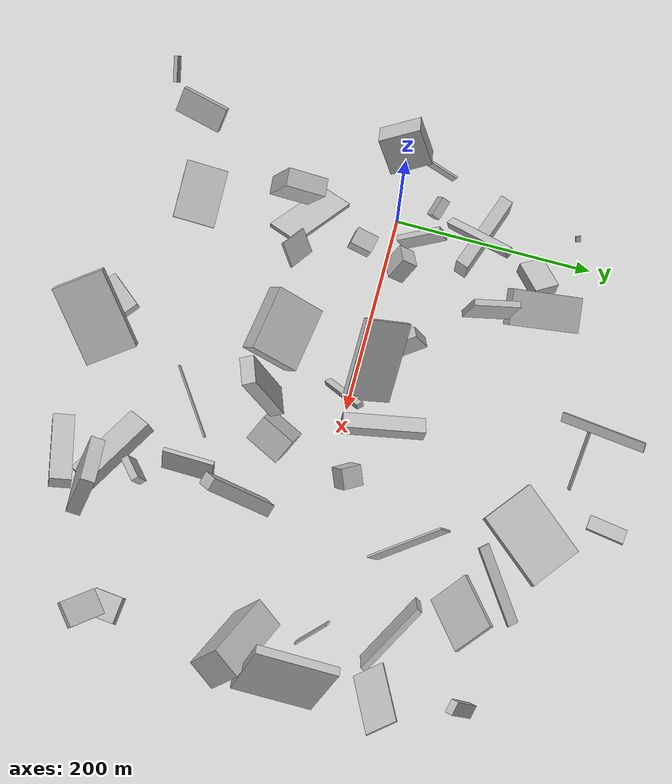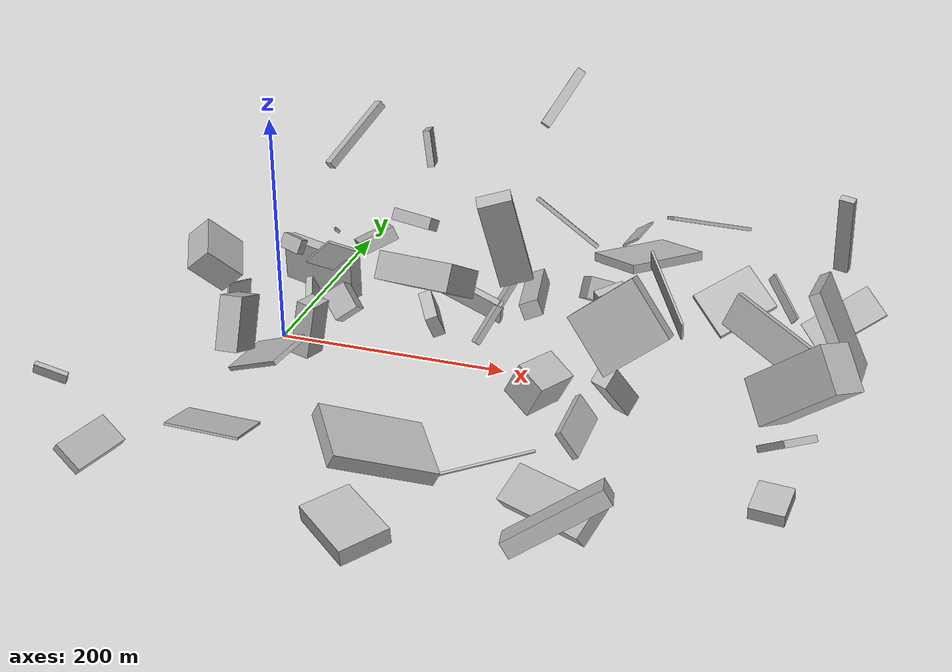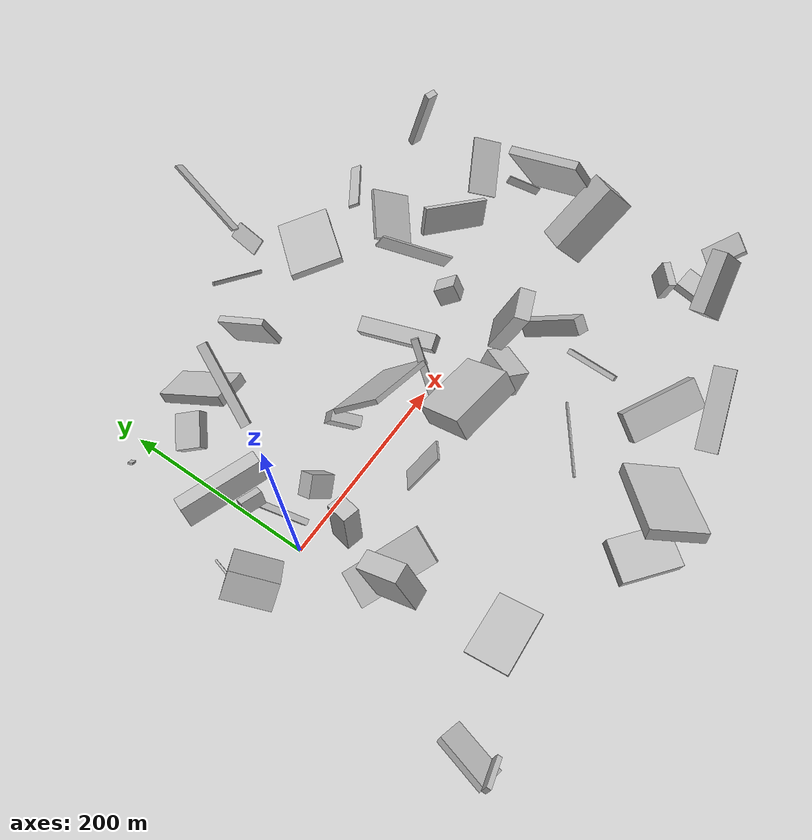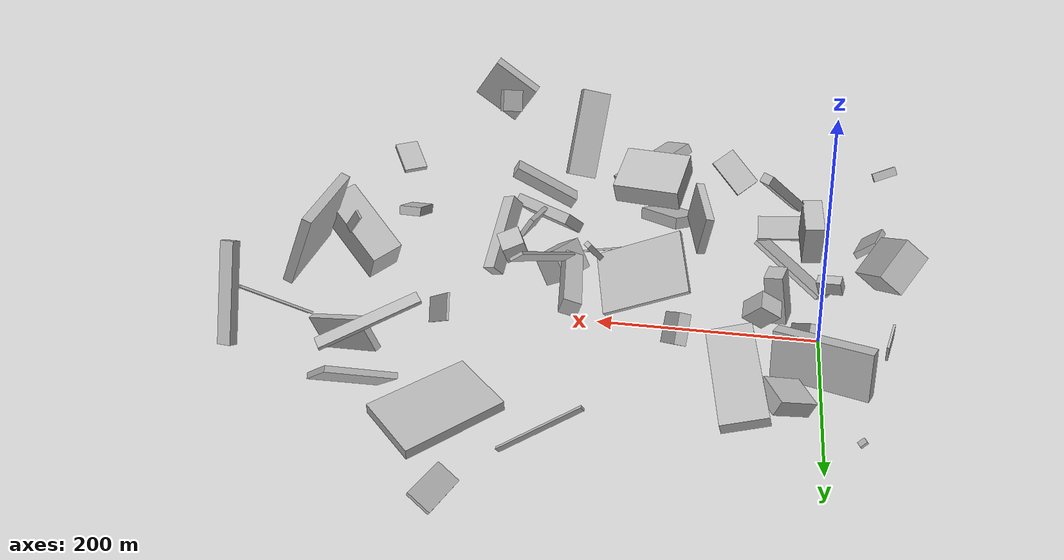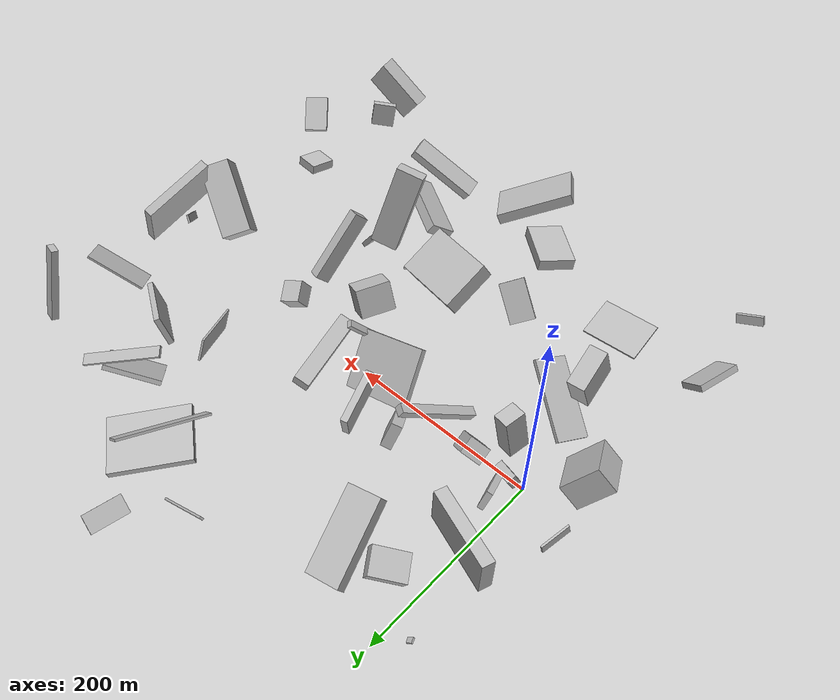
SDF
<sdf version="1.6">
 <world name="default">
  <scene>
   <sky><clouds><speed>12</speed></clouds></sky>
   <ambient>0.4 0.4 0.4 1</ambient>
   <background>0.7 0.7 0.7 1</background>
   <shadows>1</shadows>
  </scene>
  <gravity>0 0 -9.8066</gravity>
  <magnetic_field>6e-06 2.3e-05 -4.2e-05</magnetic_field>
  <physics default="0" name="default_physics" type="ode">
   <ode>
    <solver>
     <type>quick</type>
     <iters>10</iters>
     <sor>1.0</sor>
     <use_dynamic_moi_rescaling>0</use_dynamic_moi_rescaling>
    </solver>
    <constraints>
     <cfm>0</cfm>
     <erp>0.2</erp>
     <contact_max_correcting_vel>100</contact_max_correcting_vel>
     <contact_surface_layer>0.001</contact_surface_layer>
    </constraints>
   </ode>
   <max_step_size>0.004</max_step_size>
   <real_time_factor>1</real_time_factor>
   <real_time_update_rate>250</real_time_update_rate>
  </physics>
  <light name="sun" type="directional">
   <pose>0 0 10 0 0 0</pose>
   <diffuse>0.8 0.8 0.8 1</diffuse>
   <specular>0.2 0.2 0.2 1</specular>
   <attenuation>
    <range>1000</range>
    <constant>0.9</constant>
    <linear>0.01</linear>
    <quadratic>0.001</quadratic>
   </attenuation>
   <direction>-0.5 0.1 -0.9</direction>
  </light>
  <model name="building_1">
   <static>0</static>
   <pose>0.3724580403340614 -99.86659823072063 67.26739376059439 1.616196735437899 -1.1512752399519093 1.620287872233734</pose>
   <link name="link">
    <gravity>0</gravity>
    <pose>0 0 9.0 0 0 0</pose>
    <collision name="collision"><geometry><box><size>44 41 18</size></box></geometry></collision>
    <visual name="visual">
     <cast_shadows>0</cast_shadows>
     <geometry><box><size>44 41 18</size></box></geometry>
     <material>
      <script>
       <uri>model://HANNAS_wall/materials/scripts</uri>
       <uri>model://HANNAS_wall/materials/textures</uri>
       <name>vrc/HANNAS_wall</name>
      </script>
     </material>
    </visual>
   </link>
  </model>
  <model name="building_2">
   <static>0</static>
   <pose>165.34989477341057 -258.3586021208847 9.881582659225682 -0.09441727365410053 -0.04410015815050428 2.4561004035040384</pose>
   <link name="link">
    <gravity>0</gravity>
    <pose>0 0 6.5 0 0 0</pose>
    <collision name="collision"><geometry><box><size>59 40 13</size></box></geometry></collision>
    <visual name="visual">
     <cast_shadows>0</cast_shadows>
     <geometry><box><size>59 40 13</size></box></geometry>
     <material>
      <script>
       <uri>model://HANNAS_wall/materials/scripts</uri>
       <uri>model://HANNAS_wall/materials/textures</uri>
       <name>vrc/HANNAS_wall</name>
      </script>
     </material>
    </visual>
   </link>
  </model>
  <model name="building_3">
   <static>0</static>
   <pose>466.5286692263978 50.95996229520991 67.64057434504454 1.0766238511896427 1.0268774798870643 -0.4371169626938453</pose>
   <link name="link">
    <gravity>0</gravity>
    <pose>0 0 40.0 0 0 0</pose>
    <collision name="collision"><geometry><box><size>80 9 80</size></box></geometry></collision>
    <visual name="visual">
     <cast_shadows>0</cast_shadows>
     <geometry><box><size>80 9 80</size></box></geometry>
     <material>
      <script>
       <uri>model://HANNAS_wall/materials/scripts</uri>
       <uri>model://HANNAS_wall/materials/textures</uri>
       <name>vrc/HANNAS_wall</name>
      </script>
     </material>
    </visual>
   </link>
  </model>
  <model name="building_4">
   <static>0</static>
   <pose>355.60761390157677 -204.97897324230613 154.7226767060926 -0.6800679251905083 0.27318008837970803 1.5317574090756334</pose>
   <link name="link">
    <gravity>0</gravity>
    <pose>0 0 23.0 0 0 0</pose>
    <collision name="collision"><geometry><box><size>13 52 46</size></box></geometry></collision>
    <visual name="visual">
     <cast_shadows>0</cast_shadows>
     <geometry><box><size>13 52 46</size></box></geometry>
     <material>
      <script>
       <uri>model://HANNAS_wall/materials/scripts</uri>
       <uri>model://HANNAS_wall/materials/textures</uri>
       <name>vrc/HANNAS_wall</name>
      </script>
     </material>
    </visual>
   </link>
  </model>
  <model name="building_5">
   <static>0</static>
   <pose>276.9196881448696 12.073370149287962 83.15056061725647 2.0539909657653723 -0.3283103271377018 -2.738229087266363</pose>
   <link name="link">
    <gravity>0</gravity>
    <pose>0 0 10.5 0 0 0</pose>
    <collision name="collision"><geometry><box><size>20 18 21</size></box></geometry></collision>
    <visual name="visual">
     <cast_shadows>0</cast_shadows>
     <geometry><box><size>20 18 21</size></box></geometry>
     <material>
      <script>
       <uri>model://HANNAS_wall/materials/scripts</uri>
       <uri>model://HANNAS_wall/materials/textures</uri>
       <name>vrc/HANNAS_wall</name>
      </script>
     </material>
    </visual>
   </link>
  </model>
  <model name="building_6">
   <static>0</static>
   <pose>275.60423052863126 203.50929142443488 18.702415073050815 0.17754402533205174 -0.0944353137408715 -2.2539786559695965</pose>
   <link name="link">
    <gravity>0</gravity>
    <pose>0 0 4.0 0 0 0</pose>
    <collision name="collision"><geometry><box><size>80 57 8</size></box></geometry></collision>
    <visual name="visual">
     <cast_shadows>0</cast_shadows>
     <geometry><box><size>80 57 8</size></box></geometry>
     <material>
      <script>
       <uri>model://HANNAS_wall/materials/scripts</uri>
       <uri>model://HANNAS_wall/materials/textures</uri>
       <name>vrc/HANNAS_wall</name>
      </script>
     </material>
    </visual>
   </link>
  </model>
  <model name="building_7">
   <static>0</static>
   <pose>29.29331777772242 -24.90051492797867 30.68784601526994 2.2572189336541317 -1.3991428197726965 0.6846162268376657</pose>
   <link name="link">
    <gravity>0</gravity>
    <pose>0 0 8.5 0 0 0</pose>
    <collision name="collision"><geometry><box><size>47 22 17</size></box></geometry></collision>
    <visual name="visual">
     <cast_shadows>0</cast_shadows>
     <geometry><box><size>47 22 17</size></box></geometry>
     <material>
      <script>
       <uri>model://HANNAS_wall/materials/scripts</uri>
       <uri>model://HANNAS_wall/materials/textures</uri>
       <name>vrc/HANNAS_wall</name>
      </script>
     </material>
    </visual>
   </link>
  </model>
  <model name="building_8">
   <static>0</static>
   <pose>451.1207860059633 186.43742037783116 45.72575842599565 -0.2873477587401919 -0.06861965759047883 2.9330695278554706</pose>
   <link name="link">
    <gravity>0</gravity>
    <pose>0 0 40.0 0 0 0</pose>
    <collision name="collision"><geometry><box><size>13 7 80</size></box></geometry></collision>
    <visual name="visual">
     <cast_shadows>0</cast_shadows>
     <geometry><box><size>13 7 80</size></box></geometry>
     <material>
      <script>
       <uri>model://HANNAS_wall/materials/scripts</uri>
       <uri>model://HANNAS_wall/materials/textures</uri>
       <name>vrc/HANNAS_wall</name>
      </script>
     </material>
    </visual>
   </link>
  </model>
  <model name="building_9">
   <static>0</static>
   <pose>154.41623055257105 16.26416152098095 58.46111417775134 0.798266777980725 -0.3702357783244031 3.117267428623996</pose>
   <link name="link">
    <gravity>0</gravity>
    <pose>0 0 2.5 0 0 0</pose>
    <collision name="collision"><geometry><box><size>80 58 5</size></box></geometry></collision>
    <visual name="visual">
     <cast_shadows>0</cast_shadows>
     <geometry><box><size>80 58 5</size></box></geometry>
     <material>
      <script>
       <uri>model://HANNAS_wall/materials/scripts</uri>
       <uri>model://HANNAS_wall/materials/textures</uri>
       <name>vrc/HANNAS_wall</name>
      </script>
     </material>
    </visual>
   </link>
  </model>
  <model name="building_10">
   <static>0</static>
   <pose>182.73685442253338 -22.917845975726244 36.78456935781498 0.33760734351781135 -0.704754471500813 -2.605184405732771</pose>
   <link name="link">
    <gravity>0</gravity>
    <pose>0 0 31.0 0 0 0</pose>
    <collision name="collision"><geometry><box><size>5 7 62</size></box></geometry></collision>
    <visual name="visual">
     <cast_shadows>0</cast_shadows>
     <geometry><box><size>5 7 62</size></box></geometry>
     <material>
      <script>
       <uri>model://HANNAS_wall/materials/scripts</uri>
       <uri>model://HANNAS_wall/materials/textures</uri>
       <name>vrc/HANNAS_wall</name>
      </script>
     </material>
    </visual>
   </link>
  </model>
  <model name="building_11">
   <static>0</static>
   <pose>446.5673380608049 -169.78141664433895 30.453736869358035 -0.17426015798934644 -0.0033444974119696993 3.042064808893999</pose>
   <link name="link">
    <gravity>0</gravity>
    <pose>0 0 5.0 0 0 0</pose>
    <collision name="collision"><geometry><box><size>26 29 10</size></box></geometry></collision>
    <visual name="visual">
     <cast_shadows>0</cast_shadows>
     <geometry><box><size>26 29 10</size></box></geometry>
     <material>
      <script>
       <uri>model://HANNAS_wall/materials/scripts</uri>
       <uri>model://HANNAS_wall/materials/textures</uri>
       <name>vrc/HANNAS_wall</name>
      </script>
     </material>
    </visual>
   </link>
  </model>
  <model name="building_12">
   <static>0</static>
   <pose>317.38057387821044 -261.1648209136997 51.078834608956356 1.9526222986388724 -0.9723080838560146 3.029523227245176</pose>
   <link name="link">
    <gravity>0</gravity>
    <pose>0 0 10.5 0 0 0</pose>
    <collision name="collision"><geometry><box><size>13 80 21</size></box></geometry></collision>
    <visual name="visual">
     <cast_shadows>0</cast_shadows>
     <geometry><box><size>13 80 21</size></box></geometry>
     <material>
      <script>
       <uri>model://HANNAS_wall/materials/scripts</uri>
       <uri>model://HANNAS_wall/materials/textures</uri>
       <name>vrc/HANNAS_wall</name>
      </script>
     </material>
    </visual>
   </link>
  </model>
  <model name="building_13">
   <static>0</static>
   <pose>348.8925176690761 171.11558611686243 24.30594754012438 -2.14221706936962 0.35404279643963454 -2.468441182451524</pose>
   <link name="link">
    <gravity>0</gravity>
    <pose>0 0 23.0 0 0 0</pose>
    <collision name="collision"><geometry><box><size>58 5 46</size></box></geometry></collision>
    <visual name="visual">
     <cast_shadows>0</cast_shadows>
     <geometry><box><size>58 5 46</size></box></geometry>
     <material>
      <script>
       <uri>model://HANNAS_wall/materials/scripts</uri>
       <uri>model://HANNAS_wall/materials/textures</uri>
       <name>vrc/HANNAS_wall</name>
      </script>
     </material>
    </visual>
   </link>
  </model>
  <model name="building_14">
   <static>0</static>
   <pose>-4.912476381467108 34.85858047472949 65.60231107728569 -0.13218260397984039 -0.46691492644859867 -1.8027822964762972</pose>
   <link name="link">
    <gravity>0</gravity>
    <pose>0 0 6.5 0 0 0</pose>
    <collision name="collision"><geometry><box><size>9 20 13</size></box></geometry></collision>
    <visual name="visual">
     <cast_shadows>0</cast_shadows>
     <geometry><box><size>9 20 13</size></box></geometry>
     <material>
      <script>
       <uri>model://HANNAS_wall/materials/scripts</uri>
       <uri>model://HANNAS_wall/materials/textures</uri>
       <name>vrc/HANNAS_wall</name>
      </script>
     </material>
    </visual>
   </link>
  </model>
  <model name="building_15">
   <static>0</static>
   <pose>101.79234937061256 104.33719968358675 132.0590210170992 0.3104467073966395 0.13034357726491547 -2.819616660759673</pose>
   <link name="link">
    <gravity>0</gravity>
    <pose>0 0 15.5 0 0 0</pose>
    <collision name="collision"><geometry><box><size>6 45 31</size></box></geometry></collision>
    <visual name="visual">
     <cast_shadows>0</cast_shadows>
     <geometry><box><size>6 45 31</size></box></geometry>
     <material>
      <script>
       <uri>model://HANNAS_wall/materials/scripts</uri>
       <uri>model://HANNAS_wall/materials/textures</uri>
       <name>vrc/HANNAS_wall</name>
      </script>
     </material>
    </visual>
   </link>
  </model>
  <model name="building_16">
   <static>0</static>
   <pose>32.63202711252501 -194.23589382953537 35.16999882699211 -3.0945395103863587 0.2663629004241226 1.6098199458437605</pose>
   <link name="link">
    <gravity>0</gravity>
    <pose>0 0 1.0 0 0 0</pose>
    <collision name="collision"><geometry><box><size>42 59 2</size></box></geometry></collision>
    <visual name="visual">
     <cast_shadows>0</cast_shadows>
     <geometry><box><size>42 59 2</size></box></geometry>
     <material>
      <script>
       <uri>model://HANNAS_wall/materials/scripts</uri>
       <uri>model://HANNAS_wall/materials/textures</uri>
       <name>vrc/HANNAS_wall</name>
      </script>
     </material>
    </visual>
   </link>
  </model>
  <model name="building_17">
   <static>0</static>
   <pose>249.08630206016738 275.5834844101921 9.884272499052866 -2.520167869791346 0.04091362143770133 -1.723890742903491</pose>
   <link name="link">
    <gravity>0</gravity>
    <pose>0 0 1.0 0 0 0</pose>
    <collision name="collision"><geometry><box><size>38 19 2</size></box></geometry></collision>
    <visual name="visual">
     <cast_shadows>0</cast_shadows>
     <geometry><box><size>38 19 2</size></box></geometry>
     <material>
      <script>
       <uri>model://HANNAS_wall/materials/scripts</uri>
       <uri>model://HANNAS_wall/materials/textures</uri>
       <name>vrc/HANNAS_wall</name>
      </script>
     </material>
    </visual>
   </link>
  </model>
  <model name="building_18">
   <static>0</static>
   <pose>368.06799291012 116.4060323520976 28.34471739820082 -2.3968875714806135 1.1850553639820902 -2.863218448801658</pose>
   <link name="link">
    <gravity>0</gravity>
    <pose>0 0 40.0 0 0 0</pose>
    <collision name="collision"><geometry><box><size>32 6 80</size></box></geometry></collision>
    <visual name="visual">
     <cast_shadows>0</cast_shadows>
     <geometry><box><size>32 6 80</size></box></geometry>
     <material>
      <script>
       <uri>model://HANNAS_wall/materials/scripts</uri>
       <uri>model://HANNAS_wall/materials/textures</uri>
       <name>vrc/HANNAS_wall</name>
      </script>
     </material>
    </visual>
   </link>
  </model>
  <model name="building_19">
   <static>0</static>
   <pose>303.7274909044927 -130.81866432711655 34.89777384032968 -0.6094578938052064 -0.059013356354475896 1.5450119429024285</pose>
   <link name="link">
    <gravity>0</gravity>
    <pose>0 0 12.0 0 0 0</pose>
    <collision name="collision"><geometry><box><size>51 5 24</size></box></geometry></collision>
    <visual name="visual">
     <cast_shadows>0</cast_shadows>
     <geometry><box><size>51 5 24</size></box></geometry>
     <material>
      <script>
       <uri>model://HANNAS_wall/materials/scripts</uri>
       <uri>model://HANNAS_wall/materials/textures</uri>
       <name>vrc/HANNAS_wall</name>
      </script>
     </material>
    </visual>
   </link>
  </model>
  <model name="building_20">
   <static>0</static>
   <pose>-37.23985876085767 100.44339086514778 26.10668612741843 1.5707770805559071 -0.0167259973887624 1.230068655264026</pose>
   <link name="link">
    <gravity>0</gravity>
    <pose>0 0 40.0 0 0 0</pose>
    <collision name="collision"><geometry><box><size>13 40 80</size></box></geometry></collision>
    <visual name="visual">
     <cast_shadows>0</cast_shadows>
     <geometry><box><size>13 40 80</size></box></geometry>
     <material>
      <script>
       <uri>model://HANNAS_wall/materials/scripts</uri>
       <uri>model://HANNAS_wall/materials/textures</uri>
       <name>vrc/HANNAS_wall</name>
      </script>
     </material>
    </visual>
   </link>
  </model>
  <model name="building_21">
   <static>0</static>
   <pose>211.10925191179547 -77.062126343641 156.0449857743255 0.8037113929837879 1.2237552987834603 1.2003497398565242</pose>
   <link name="link">
    <gravity>0</gravity>
    <pose>0 0 13.0 0 0 0</pose>
    <collision name="collision"><geometry><box><size>80 13 26</size></box></geometry></collision>
    <visual name="visual">
     <cast_shadows>0</cast_shadows>
     <geometry><box><size>80 13 26</size></box></geometry>
     <material>
      <script>
       <uri>model://HANNAS_wall/materials/scripts</uri>
       <uri>model://HANNAS_wall/materials/textures</uri>
       <name>vrc/HANNAS_wall</name>
      </script>
     </material>
    </visual>
   </link>
  </model>
  <model name="building_22">
   <static>0</static>
   <pose>159.44475679074253 -77.6425032186038 110.04834384006463 0.535823091454583 0.029326634333732903 2.994350617729776</pose>
   <link name="link">
    <gravity>0</gravity>
    <pose>0 0 11.0 0 0 0</pose>
    <collision name="collision"><geometry><box><size>62 49 22</size></box></geometry></collision>
    <visual name="visual">
     <cast_shadows>0</cast_shadows>
     <geometry><box><size>62 49 22</size></box></geometry>
     <material>
      <script>
       <uri>model://HANNAS_wall/materials/scripts</uri>
       <uri>model://HANNAS_wall/materials/textures</uri>
       <name>vrc/HANNAS_wall</name>
      </script>
     </material>
    </visual>
   </link>
  </model>
  <model name="building_23">
   <static>0</static>
   <pose>18.530795248846772 -99.39374277229236 28.22489046517429 1.0171480806891706 -0.9946940015437461 -3.063762389771886</pose>
   <link name="link">
    <gravity>0</gravity>
    <pose>0 0 17.5 0 0 0</pose>
    <collision name="collision"><geometry><box><size>4 80 35</size></box></geometry></collision>
    <visual name="visual">
     <cast_shadows>0</cast_shadows>
     <geometry><box><size>4 80 35</size></box></geometry>
     <material>
      <script>
       <uri>model://HANNAS_wall/materials/scripts</uri>
       <uri>model://HANNAS_wall/materials/textures</uri>
       <name>vrc/HANNAS_wall</name>
      </script>
     </material>
    </visual>
   </link>
  </model>
  <model name="building_24">
   <static>0</static>
   <pose>54.81488856681998 195.8820982586163 30.35169945511649 -0.46060774220427647 1.0439233473817975 -1.8471746381902</pose>
   <link name="link">
    <gravity>0</gravity>
    <pose>0 0 40.0 0 0 0</pose>
    <collision name="collision"><geometry><box><size>11 35 80</size></box></geometry></collision>
    <visual name="visual">
     <cast_shadows>0</cast_shadows>
     <geometry><box><size>11 35 80</size></box></geometry>
     <material>
      <script>
       <uri>model://HANNAS_wall/materials/scripts</uri>
       <uri>model://HANNAS_wall/materials/textures</uri>
       <name>vrc/HANNAS_wall</name>
      </script>
     </material>
    </visual>
   </link>
  </model>
  <model name="building_25">
   <static>0</static>
   <pose>232.44905216176707 -149.25938542094286 11.61262249572917 2.6335876828655747 0.07703114292652925 -2.5280415157022755</pose>
   <link name="link">
    <gravity>0</gravity>
    <pose>0 0 1.0 0 0 0</pose>
    <collision name="collision"><geometry><box><size>78 2 2</size></box></geometry></collision>
    <visual name="visual">
     <cast_shadows>0</cast_shadows>
     <geometry><box><size>78 2 2</size></box></geometry>
     <material>
      <script>
       <uri>model://HANNAS_wall/materials/scripts</uri>
       <uri>model://HANNAS_wall/materials/textures</uri>
       <name>vrc/HANNAS_wall</name>
      </script>
     </material>
    </visual>
   </link>
  </model>
  <model name="building_26">
   <static>0</static>
   <pose>-70.08472027788441 -241.25957271292248 82.78702984504363 0.3544949510586206 -0.2542936140980038 1.673651840635778</pose>
   <link name="link">
    <gravity>0</gravity>
    <pose>0 0 4.5 0 0 0</pose>
    <collision name="collision"><geometry><box><size>4 25 9</size></box></geometry></collision>
    <visual name="visual">
     <cast_shadows>0</cast_shadows>
     <geometry><box><size>4 25 9</size></box></geometry>
     <material>
      <script>
       <uri>model://HANNAS_wall/materials/scripts</uri>
       <uri>model://HANNAS_wall/materials/textures</uri>
       <name>vrc/HANNAS_wall</name>
      </script>
     </material>
    </visual>
   </link>
  </model>
  <model name="building_27">
   <static>0</static>
   <pose>58.29952941863814 10.510095375910492 25.631422223840666 0.7048691259192716 -0.5531364662784022 -1.584054180898362</pose>
   <link name="link">
    <gravity>0</gravity>
    <pose>0 0 12.5 0 0 0</pose>
    <collision name="collision"><geometry><box><size>17 22 25</size></box></geometry></collision>
    <visual name="visual">
     <cast_shadows>0</cast_shadows>
     <geometry><box><size>17 22 25</size></box></geometry>
     <material>
      <script>
       <uri>model://HANNAS_wall/materials/scripts</uri>
       <uri>model://HANNAS_wall/materials/textures</uri>
       <name>vrc/HANNAS_wall</name>
      </script>
     </material>
    </visual>
   </link>
  </model>
  <model name="building_28">
   <static>0</static>
   <pose>-22.738966701466484 180.25915030849887 14.827446980737731 -0.8961919514214258 0.10397228759298126 1.9654392053553302</pose>
   <link name="link">
    <gravity>0</gravity>
    <pose>0 0 3.0 0 0 0</pose>
    <collision name="collision"><geometry><box><size>5 2 6</size></box></geometry></collision>
    <visual name="visual">
     <cast_shadows>0</cast_shadows>
     <geometry><box><size>5 2 6</size></box></geometry>
     <material>
      <script>
       <uri>model://HANNAS_wall/materials/scripts</uri>
       <uri>model://HANNAS_wall/materials/textures</uri>
       <name>vrc/HANNAS_wall</name>
      </script>
     </material>
    </visual>
   </link>
  </model>
  <model name="building_29">
   <static>0</static>
   <pose>463.38715635290293 97.26214914116952 43.02388261816677 -2.7104254585239547 -0.5246458824474429 0.47396730844231727</pose>
   <link name="link">
    <gravity>0</gravity>
    <pose>0 0 1.0 0 0 0</pose>
    <collision name="collision"><geometry><box><size>63 33 2</size></box></geometry></collision>
    <visual name="visual">
     <cast_shadows>0</cast_shadows>
     <geometry><box><size>63 33 2</size></box></geometry>
     <material>
      <script>
       <uri>model://HANNAS_wall/materials/scripts</uri>
       <uri>model://HANNAS_wall/materials/textures</uri>
       <name>vrc/HANNAS_wall</name>
      </script>
     </material>
    </visual>
   </link>
  </model>
  <model name="building_30">
   <static>0</static>
   <pose>336.18125878179075 62.16274209075546 28.10519118981079 0.39805879008574085 -1.085698154999818 -1.411294908193986</pose>
   <link name="link">
    <gravity>0</gravity>
    <pose>0 0 40.0 0 0 0</pose>
    <collision name="collision"><geometry><box><size>22 2 80</size></box></geometry></collision>
    <visual name="visual">
     <cast_shadows>0</cast_shadows>
     <geometry><box><size>22 2 80</size></box></geometry>
     <material>
      <script>
       <uri>model://HANNAS_wall/materials/scripts</uri>
       <uri>model://HANNAS_wall/materials/textures</uri>
       <name>vrc/HANNAS_wall</name>
      </script>
     </material>
    </visual>
   </link>
  </model>
  <model name="building_31">
   <static>0</static>
   <pose>325.2797805017056 -158.24487356857497 157.4612150534629 -0.1729318017547324 0.15110656457448327 -2.4140603371450258</pose>
   <link name="link">
    <gravity>0</gravity>
    <pose>0 0 11.0 0 0 0</pose>
    <collision name="collision"><geometry><box><size>22 7 22</size></box></geometry></collision>
    <visual name="visual">
     <cast_shadows>0</cast_shadows>
     <geometry><box><size>22 7 22</size></box></geometry>
     <material>
      <script>
       <uri>model://HANNAS_wall/materials/scripts</uri>
       <uri>model://HANNAS_wall/materials/textures</uri>
       <name>vrc/HANNAS_wall</name>
      </script>
     </material>
    </visual>
   </link>
  </model>
  <model name="building_32">
   <static>0</static>
   <pose>17.940875062533145 29.268164940037458 20.38865218645151 2.09530432529827 -1.0508928120702732 -1.8091141706289273</pose>
   <link name="link">
    <gravity>0</gravity>
    <pose>0 0 3.0 0 0 0</pose>
    <collision name="collision"><geometry><box><size>19 46 6</size></box></geometry></collision>
    <visual name="visual">
     <cast_shadows>0</cast_shadows>
     <geometry><box><size>19 46 6</size></box></geometry>
     <material>
      <script>
       <uri>model://HANNAS_wall/materials/scripts</uri>
       <uri>model://HANNAS_wall/materials/textures</uri>
       <name>vrc/HANNAS_wall</name>
      </script>
     </material>
    </visual>
   </link>
  </model>
  <model name="building_33">
   <static>0</static>
   <pose>216.69256523088723 39.66371728105877 49.21753416387972 0.3685688864495843 -0.14825836825164568 -1.3634607909052565</pose>
   <link name="link">
    <gravity>0</gravity>
    <pose>0 0 7.0 0 0 0</pose>
    <collision name="collision"><geometry><box><size>80 16 14</size></box></geometry></collision>
    <visual name="visual">
     <cast_shadows>0</cast_shadows>
     <geometry><box><size>80 16 14</size></box></geometry>
     <material>
      <script>
       <uri>model://HANNAS_wall/materials/scripts</uri>
       <uri>model://HANNAS_wall/materials/textures</uri>
       <name>vrc/HANNAS_wall</name>
      </script>
     </material>
    </visual>
   </link>
  </model>
  <model name="building_34">
   <static>0</static>
   <pose>-53.049711549271485 -196.79764435696598 13.813096943679561 -1.5764260712163998 -0.6374201450239327 2.9025527641197995</pose>
   <link name="link">
    <gravity>0</gravity>
    <pose>0 0 24.5 0 0 0</pose>
    <collision name="collision"><geometry><box><size>26 7 49</size></box></geometry></collision>
    <visual name="visual">
     <cast_shadows>0</cast_shadows>
     <geometry><box><size>26 7 49</size></box></geometry>
     <material>
      <script>
       <uri>model://HANNAS_wall/materials/scripts</uri>
       <uri>model://HANNAS_wall/materials/textures</uri>
       <name>vrc/HANNAS_wall</name>
      </script>
     </material>
    </visual>
   </link>
  </model>
  <model name="building_35">
   <static>0</static>
   <pose>25.130994848605056 149.4997224358577 34.74593865355765 -2.8271336323577336 0.3248531660673258 -2.4515810530385513</pose>
   <link name="link">
    <gravity>0</gravity>
    <pose>0 0 6.5 0 0 0</pose>
    <collision name="collision"><geometry><box><size>35 26 13</size></box></geometry></collision>
    <visual name="visual">
     <cast_shadows>0</cast_shadows>
     <geometry><box><size>35 26 13</size></box></geometry>
     <material>
      <script>
       <uri>model://HANNAS_wall/materials/scripts</uri>
       <uri>model://HANNAS_wall/materials/textures</uri>
       <name>vrc/HANNAS_wall</name>
      </script>
     </material>
    </visual>
   </link>
  </model>
  <model name="building_36">
   <static>0</static>
   <pose>258.1967260498724 -65.51889918436171 25.66601151395548 0.1403458517623246 1.099171897295674 2.814402827158032</pose>
   <link name="link">
    <gravity>0</gravity>
    <pose>0 0 14.0 0 0 0</pose>
    <collision name="collision"><geometry><box><size>31 37 28</size></box></geometry></collision>
    <visual name="visual">
     <cast_shadows>0</cast_shadows>
     <geometry><box><size>31 37 28</size></box></geometry>
     <material>
      <script>
       <uri>model://HANNAS_wall/materials/scripts</uri>
       <uri>model://HANNAS_wall/materials/textures</uri>
       <name>vrc/HANNAS_wall</name>
      </script>
     </material>
    </visual>
   </link>
  </model>
  <model name="building_37">
   <static>0</static>
   <pose>463.49055920595293 -175.2604301736683 92.77668900534317 1.5159855228939458 -0.6309332410688662 -0.8567072859673505</pose>
   <link name="link">
    <gravity>0</gravity>
    <pose>0 0 12.5 0 0 0</pose>
    <collision name="collision"><geometry><box><size>38 5 25</size></box></geometry></collision>
    <visual name="visual">
     <cast_shadows>0</cast_shadows>
     <geometry><box><size>38 5 25</size></box></geometry>
     <material>
      <script>
       <uri>model://HANNAS_wall/materials/scripts</uri>
       <uri>model://HANNAS_wall/materials/textures</uri>
       <name>vrc/HANNAS_wall</name>
      </script>
     </material>
    </visual>
   </link>
  </model>
  <model name="building_38">
   <static>0</static>
   <pose>189.32030193607542 230.7898799419024 31.030254032671568 0.6343771326982918 0.32000941695503826 1.761123291439597</pose>
   <link name="link">
    <gravity>0</gravity>
    <pose>0 0 2.0 0 0 0</pose>
    <collision name="collision"><geometry><box><size>2 74 4</size></box></geometry></collision>
    <visual name="visual">
     <cast_shadows>0</cast_shadows>
     <geometry><box><size>2 74 4</size></box></geometry>
     <material>
      <script>
       <uri>model://HANNAS_wall/materials/scripts</uri>
       <uri>model://HANNAS_wall/materials/textures</uri>
       <name>vrc/HANNAS_wall</name>
      </script>
     </material>
    </visual>
   </link>
  </model>
  <model name="building_39">
   <static>0</static>
   <pose>215.6812158466021 -227.36653293563012 65.05337275915635 0.4374318908206032 -1.107042726366624 0.19840447090699945</pose>
   <link name="link">
    <gravity>0</gravity>
    <pose>0 0 40.0 0 0 0</pose>
    <collision name="collision"><geometry><box><size>11 52 80</size></box></geometry></collision>
    <visual name="visual">
     <cast_shadows>0</cast_shadows>
     <geometry><box><size>11 52 80</size></box></geometry>
     <material>
      <script>
       <uri>model://HANNAS_wall/materials/scripts</uri>
       <uri>model://HANNAS_wall/materials/textures</uri>
       <name>vrc/HANNAS_wall</name>
      </script>
     </material>
    </visual>
   </link>
  </model>
  <model name="building_40">
   <static>0</static>
   <pose>180.08011958327398 230.6560371912899 160.44250326305436 2.17589225576165 -0.35940874923946453 1.388989922013247</pose>
   <link name="link">
    <gravity>0</gravity>
    <pose>0 0 4.5 0 0 0</pose>
    <collision name="collision"><geometry><box><size>80 2 9</size></box></geometry></collision>
    <visual name="visual">
     <cast_shadows>0</cast_shadows>
     <geometry><box><size>80 2 9</size></box></geometry>
     <material>
      <script>
       <uri>model://HANNAS_wall/materials/scripts</uri>
       <uri>model://HANNAS_wall/materials/textures</uri>
       <name>vrc/HANNAS_wall</name>
      </script>
     </material>
    </visual>
   </link>
  </model>
  <model name="building_41">
   <static>0</static>
   <pose>439.5201672996732 -29.865891754335543 70.17487302051234 2.39897213876773 0.25833055884706074 0.944006569869563</pose>
   <link name="link">
    <gravity>0</gravity>
    <pose>0 0 19.5 0 0 0</pose>
    <collision name="collision"><geometry><box><size>32 80 39</size></box></geometry></collision>
    <visual name="visual">
     <cast_shadows>0</cast_shadows>
     <geometry><box><size>32 80 39</size></box></geometry>
     <material>
      <script>
       <uri>model://HANNAS_wall/materials/scripts</uri>
       <uri>model://HANNAS_wall/materials/textures</uri>
       <name>vrc/HANNAS_wall</name>
      </script>
     </material>
    </visual>
   </link>
  </model>
  <model name="building_42">
   <static>0</static>
   <pose>126.59689336568026 43.1955937674301 22.73673768678301 2.2585729647843804 -1.0580678174969425 -1.7733105622842866</pose>
   <link name="link">
    <gravity>0</gravity>
    <pose>0 0 5.5 0 0 0</pose>
    <collision name="collision"><geometry><box><size>27 30 11</size></box></geometry></collision>
    <visual name="visual">
     <cast_shadows>0</cast_shadows>
     <geometry><box><size>27 30 11</size></box></geometry>
     <material>
      <script>
       <uri>model://HANNAS_wall/materials/scripts</uri>
       <uri>model://HANNAS_wall/materials/textures</uri>
       <name>vrc/HANNAS_wall</name>
      </script>
     </material>
    </visual>
   </link>
  </model>
  <model name="building_43">
   <static>0</static>
   <pose>265.16096072997266 -188.42930698296297 24.32021730548233 1.3978842803688585 0.935272085533815 0.9155035860320141</pose>
   <link name="link">
    <gravity>0</gravity>
    <pose>0 0 40.0 0 0 0</pose>
    <collision name="collision"><geometry><box><size>12 31 80</size></box></geometry></collision>
    <visual name="visual">
     <cast_shadows>0</cast_shadows>
     <geometry><box><size>12 31 80</size></box></geometry>
     <material>
      <script>
       <uri>model://HANNAS_wall/materials/scripts</uri>
       <uri>model://HANNAS_wall/materials/textures</uri>
       <name>vrc/HANNAS_wall</name>
      </script>
     </material>
    </visual>
   </link>
  </model>
  <model name="building_44">
   <static>0</static>
   <pose>28.07233206534466 52.51821430844706 142.61172723944017 0.39807924295046776 -0.9763395747495807 -2.4419668823911445</pose>
   <link name="link">
    <gravity>0</gravity>
    <pose>0 0 36.5 0 0 0</pose>
    <collision name="collision"><geometry><box><size>7 8 73</size></box></geometry></collision>
    <visual name="visual">
     <cast_shadows>0</cast_shadows>
     <geometry><box><size>7 8 73</size></box></geometry>
     <material>
      <script>
       <uri>model://HANNAS_wall/materials/scripts</uri>
       <uri>model://HANNAS_wall/materials/textures</uri>
       <name>vrc/HANNAS_wall</name>
      </script>
     </material>
    </visual>
   </link>
  </model>
  <model name="building_45">
   <static>0</static>
   <pose>309.77078938240305 -82.92552027340518 42.60820084766102 -0.7939105097106691 0.1925381371207937 -0.2913328302656518</pose>
   <link name="link">
    <gravity>0</gravity>
    <pose>0 0 8.5 0 0 0</pose>
    <collision name="collision"><geometry><box><size>13 80 17</size></box></geometry></collision>
    <visual name="visual">
     <cast_shadows>0</cast_shadows>
     <geometry><box><size>13 80 17</size></box></geometry>
     <material>
      <script>
       <uri>model://HANNAS_wall/materials/scripts</uri>
       <uri>model://HANNAS_wall/materials/textures</uri>
       <name>vrc/HANNAS_wall</name>
      </script>
     </material>
    </visual>
   </link>
  </model>
  <model name="building_46">
   <static>0</static>
   <pose>71.40661204865623 -73.14865677390667 114.71142555794525 -0.7075701793409658 -0.4662142567439137 -2.486126552276093</pose>
   <link name="link">
    <gravity>0</gravity>
    <pose>0 0 19.0 0 0 0</pose>
    <collision name="collision"><geometry><box><size>24 2 38</size></box></geometry></collision>
    <visual name="visual">
     <cast_shadows>0</cast_shadows>
     <geometry><box><size>24 2 38</size></box></geometry>
     <material>
      <script>
       <uri>model://HANNAS_wall/materials/scripts</uri>
       <uri>model://HANNAS_wall/materials/textures</uri>
       <name>vrc/HANNAS_wall</name>
      </script>
     </material>
    </visual>
   </link>
  </model>
  <model name="building_47">
   <static>0</static>
   <pose>-56.488763104387544 29.7058988233762 14.823735791736713 -0.2679450478152341 -0.04799038701455833 -0.22671014303605544</pose>
   <link name="link">
    <gravity>0</gravity>
    <pose>0 0 7.0 0 0 0</pose>
    <collision name="collision"><geometry><box><size>2 30 14</size></box></geometry></collision>
    <visual name="visual">
     <cast_shadows>0</cast_shadows>
     <geometry><box><size>2 30 14</size></box></geometry>
     <material>
      <script>
       <uri>model://HANNAS_wall/materials/scripts</uri>
       <uri>model://HANNAS_wall/materials/textures</uri>
       <name>vrc/HANNAS_wall</name>
      </script>
     </material>
    </visual>
   </link>
  </model>
  <model name="building_48">
   <static>0</static>
   <pose>364.6078969414525 203.6732797067381 63.668391186247035 -0.873556438169812 -1.121867856180281 1.560215431395005</pose>
   <link name="link">
    <gravity>0</gravity>
    <pose>0 0 40.0 0 0 0</pose>
    <collision name="collision"><geometry><box><size>3 11 80</size></box></geometry></collision>
    <visual name="visual">
     <cast_shadows>0</cast_shadows>
     <geometry><box><size>3 11 80</size></box></geometry>
     <material>
      <script>
       <uri>model://HANNAS_wall/materials/scripts</uri>
       <uri>model://HANNAS_wall/materials/textures</uri>
       <name>vrc/HANNAS_wall</name>
      </script>
     </material>
    </visual>
   </link>
  </model>
  <model name="building_49">
   <static>0</static>
   <pose>432.40969954219065 14.12359228162477 79.79725199933344 0.2973412523798457 0.9239508109153928 2.717728683398203</pose>
   <link name="link">
    <gravity>0</gravity>
    <pose>0 0 20.5 0 0 0</pose>
    <collision name="collision"><geometry><box><size>8 2 41</size></box></geometry></collision>
    <visual name="visual">
     <cast_shadows>0</cast_shadows>
     <geometry><box><size>8 2 41</size></box></geometry>
     <material>
      <script>
       <uri>model://HANNAS_wall/materials/scripts</uri>
       <uri>model://HANNAS_wall/materials/textures</uri>
       <name>vrc/HANNAS_wall</name>
      </script>
     </material>
    </visual>
   </link>
  </model>
  <model name="building_50">
   <static>0</static>
   <pose>-44.625982413945664 0.8595098015390605 60.48543305254099 0.7509555036134444 0.3028136785129184 -1.1417971952010524</pose>
   <link name="link">
    <gravity>0</gravity>
    <pose>0 0 19.5 0 0 0</pose>
    <collision name="collision"><geometry><box><size>42 25 39</size></box></geometry></collision>
    <visual name="visual">
     <cast_shadows>0</cast_shadows>
     <geometry><box><size>42 25 39</size></box></geometry>
     <material>
      <script>
       <uri>model://HANNAS_wall/materials/scripts</uri>
       <uri>model://HANNAS_wall/materials/textures</uri>
       <name>vrc/HANNAS_wall</name>
      </script>
     </material>
    </visual>
   </link>
  </model>
 </world>
</sdf>
